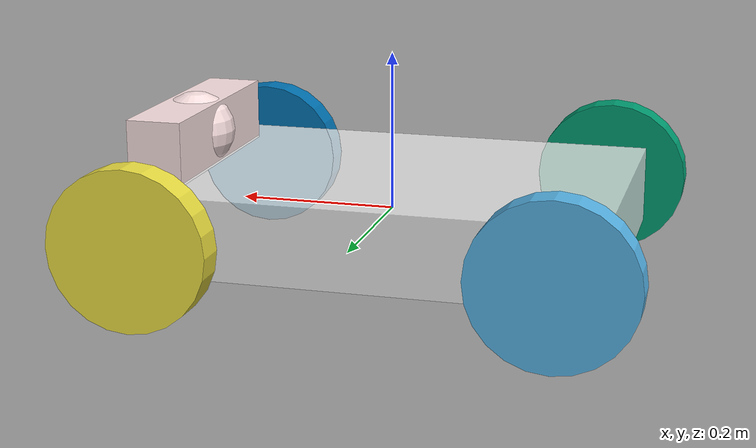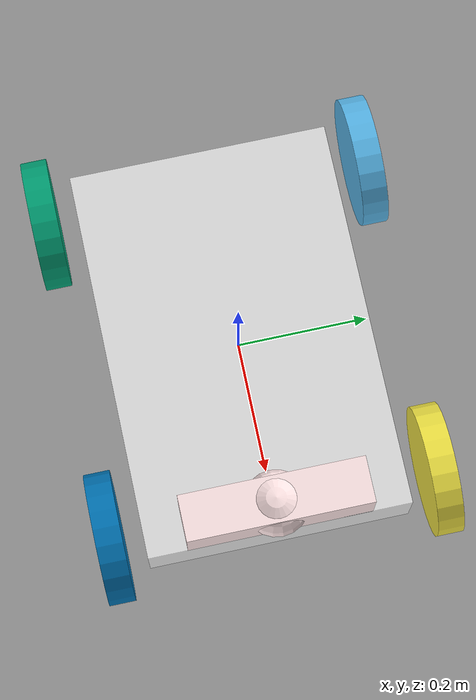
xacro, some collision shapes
<?xml version="1.0"?>
<robot xmlns:xacro="http://www.ros.org/wiki/xacro" name="mobile_robot">
  <xacro:macro name="default_inertial" params="mass">
    <inertial>
      <mass value="${mass}"/>
      <inertia ixx="1.0" ixy="0.0" ixz="0.0" iyy="1.0" iyz="0.0" izz="1.0"/>
    </inertial>
  </xacro:macro>
  <xacro:macro name="default_inertial" params="mass">
    <inertial>
      <mass value="${mass}"/>
      <inertia ixx="1.0" ixy="0.0" ixz="0.0" iyy="1.0" iyz="0.0" izz="1.0"/>
    </inertial>
  </xacro:macro>

  <xacro:macro name="wheel" params="name x y">
    <link name="${name}">
      <visual>
        <origin xyz="0 0 0" rpy="${pi/2} 0 0"/>
        <geometry>
          <cylinder length="0.04" radius="0.1"/>
        </geometry>
      </visual>
      <collision>
        <origin xyz="0 0 0" rpy="${pi/2} 0 0"/>
        <geometry>
          <cylinder length="0.04" radius="0.1"/>
        </geometry>
      </collision>
      <xacro:default_inertial mass="0.6"/>
    </link>

    <joint name="base_link_${name}" type="continuous">
      <origin xyz="${y*0.25} ${x*0.25} 0" rpy="0 0 0"/>
      <axis rpy="0 0 0" xyz="0 1 0"/>
      <parent link="base_link"/>
      <child link="${name}"/>
    </joint>

    <transmission name="base_link_${name}_wheel_trans">
      <type>transmission_interface/SimpleTransmission</type>
      <actuator name="base_link_${name}_wheel_motor">
        <mechanicalReduction>1</mechanicalReduction>
      </actuator>
      <joint name="base_link_${name}">
        <hardwareInterface>hardware_interface/VelocityJointInterface</hardwareInterface>
      </joint>
    </transmission>
  </xacro:macro>

  <link name="base_link">
    <visual>
      <origin xyz="0 0 0" rpy="0 0 0"/>
      <geometry>
        <box size="0.6 0.4 0.10"/>
      </geometry>
      <material name="acrylic">
        <color rgba="1 1 1 0.8"/>
      </material>
    </visual>
    <collision>
      <origin xyz="0 0 0" rpy="0 0 0"/>
      <geometry>
        <box size="0.6 0.4 0.10"/>
      </geometry>
    </collision>
    <xacro:default_inertial mass="20"/>
  </link>

  <xacro:wheel name="wh_left_back" x="1" y="-1"/>
  <xacro:wheel name="wh_right_back" x="-1" y="-1"/>
  <xacro:wheel name="wh_left_front" x="1" y="1"/>
  <xacro:wheel name="wh_right_front" x="-1" y="1"/>

  <!-- =================== Kinect ==================== -->
  <link name="kinect_link">
    <visual>
      <origin xyz="0 0 0" rpy="0 0 0"/>
      <geometry>
        <mesh filename="package://mobile_robot_description/meshes/kinect.stl" scale="0.01 0.01 0.01"/>
      </geometry>
      <material name="kinect">
        <color rgba="1 0.9 0.9 1"/>
      </material>
    </visual>
    <collision>
      <origin xyz="0 0 0" rpy="0 0 0"/>
      <geometry>
        <box size="0.28 0.07 0.08"/>
      </geometry>
    </collision>
    <xacro:default_inertial mass="0.2"/>
  </link>

  <joint name="base_link_kinect_link" type="fixed">
    <origin xyz="0.265 0 0.087" rpy="0 0 ${pi/2}"/>
    <parent link="base_link"/>
    <child link="kinect_link"/>
  </joint>

  <!-- =================== Gazebo - Kinect ==================== -->
  <link name="gz_kinect_link">
    <visual>
      <origin xyz="0 0 0" rpy="0 0 0"/>
      <geometry>
        <sphere radius="0.05"/>
      </geometry>
      <material name="kinect">
        <color rgba="1 0.9 0.9 1"/>
      </material>
    </visual>
    <collision>
      <origin xyz="0 0 0" rpy="0 0 0"/>
      <geometry>
        <sphere radius="0.05"/>
      </geometry>
    </collision>
    <xacro:default_inertial mass="0.2"/>
  </link>

  <joint name="kinect_link_gz_kinect_link" type="fixed">
    <origin xyz="0 0 0" rpy="0 0 -${pi/2}"/>
    <parent link="kinect_link"/>
    <child link="gz_kinect_link"/>
  </joint>

  <gazebo reference="gz_kinect_link">
    <sensor type="depth" name="kinect">
      <pose>0 0 0 0 0 0</pose>
      <always_on>1</always_on>
      <visualize>true</visualize>

      <camera>
        <horizontal_fov>1.047</horizontal_fov>
        <image>
          <width>640</width>
          <height>480</height>
          <format>R8G8B8</format>
        </image>
        <depth_camera></depth_camera>
        <clip>
          <near>0.1</near>
          <far>100</far>
        </clip>

        <noise>
          <type>gaussian</type>
          <mean>0.0</mean>
          <stddev>0.7</stddev>
        </noise>
      </camera>

      <plugin name="camera_controller" filename="libgazebo_ros_openni_kinect.so">
        <alwaysOn>true</alwaysOn>

        <updateRate>10.0</updateRate>
        <cameraName>kinect_sensor</cameraName>
        <frameName>gz_kinect_link</frameName>

        <imageTopicName>/mobile_robot/rgb/image_raw</imageTopicName>
        <depthImageTopicName>/mobile_robot/depth/image_raw</depthImageTopicName>
        <pointCloudTopicName>/mobile_robot/depth/points</pointCloudTopicName>

        <cameraInfoTopicName>/mobile_robot/rgb/camera_info</cameraInfoTopicName>
        <depthImageInfoTopicName>/mobile_robot/depth/camera_info</depthImageInfoTopicName>

        <pointCloudCutoff>0.4</pointCloudCutoff>
        <hackBaseline>0.07</hackBaseline>
        <distortionK1>0.001</distortionK1>
        <distortionK2>0.001</distortionK2>
        <distortionK3>0.001</distortionK3>
        <distortionT1>0.001</distortionT1>
        <distortionT2>0.001</distortionT2>
        <CxPrime>0</CxPrime>
        <Cx>0</Cx>
        <Cy>0</Cy>
        <focalLength>0</focalLength>
      </plugin>
    </sensor>
  </gazebo>

  <!-- =================== Gazebo ==================== -->
  <gazebo>
    <plugin name="gazebo_ros_control" filename="libgazebo_ros_control.so">
      <robotNamespace>/</robotNamespace>
    </plugin>
  </gazebo>
</robot>
